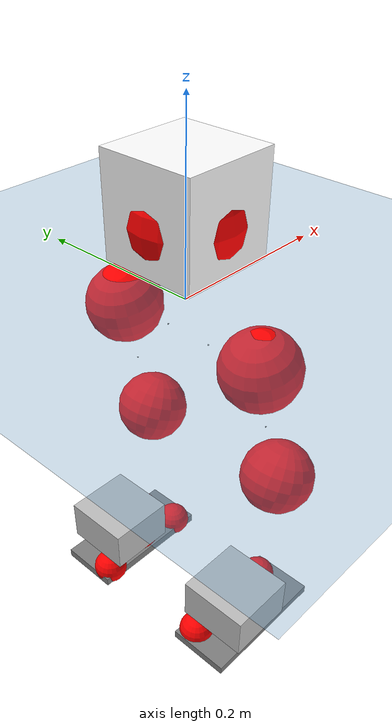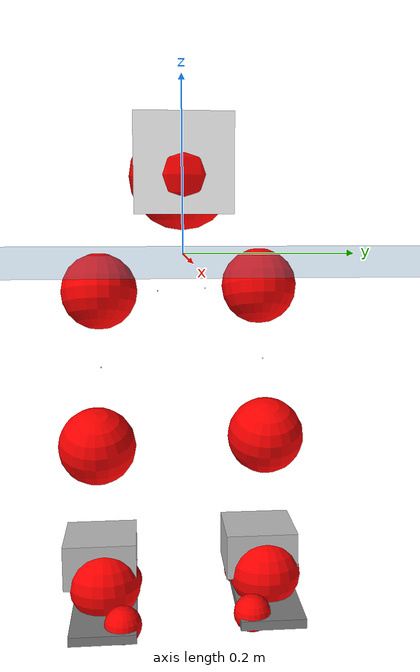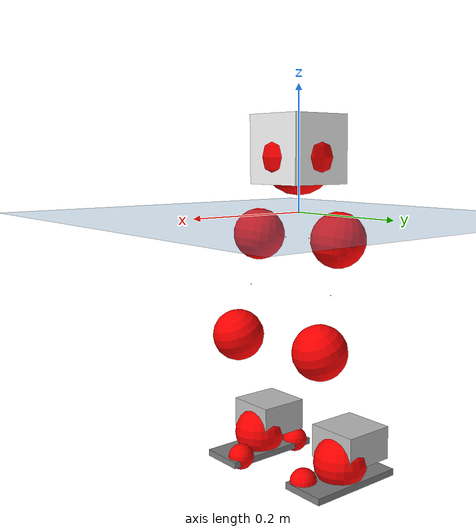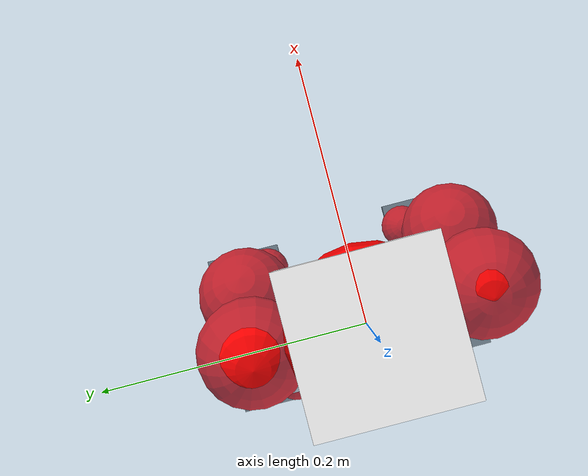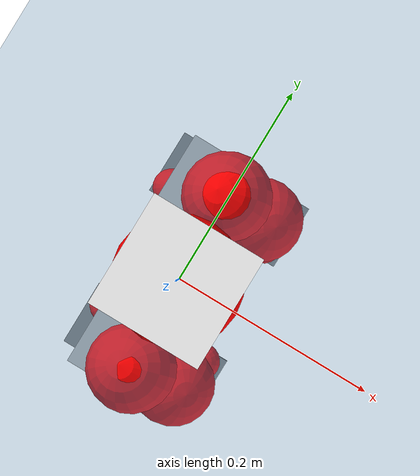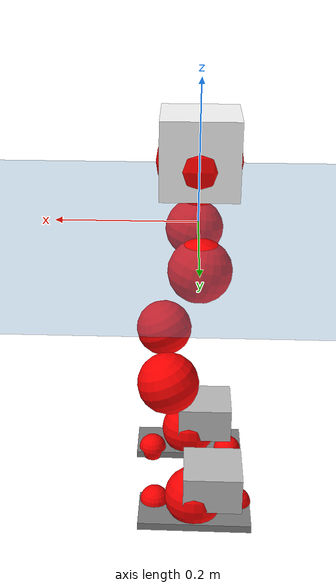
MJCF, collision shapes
<mujoco model="pi_12dof_release_v1">
  <compiler angle="radian" assetdir="assets" balanceinertia="true" inertiafromgeom="false"/>

  <option timestep="0.005" density="1.2" viscosity="2e-05"/>

  <size nkey="1"/>

  <visual>
    <quality shadowsize="8192"/>
    <map shadowclip="0.5"/>
  </visual>

  <default>
    <default class="/">
      <joint armature="0.01" damping="0.01" frictionloss="0.01"/>
      <geom contype="0" conaffinity="0" group="1" solref="-1000 -80"/>
      <site size="0.01 0.005 0.005" group="5"/>
      <general forcelimited="true" biastype="affine" gainprm="20" biasprm="0 -20 -0.5"/>
      <default class="foot">
        <geom size="0.0845 0.036 0.005" type="box" condim="6" group="4" priority="1" friction="0.9 0.2 0.2" solimp="0.015 1 0.005"/>
      </default>
      <default class="reward_collision_sphere">
        <geom group="5" rgba="1 0 0 1"/>
      </default>
    </default>
  </default>

  <asset>
    <texture type="skybox" colorspace="auto" name="//unnamed_texture_0" builtin="gradient" rgb1="0.95 0.95 0.95" rgb2="0.95 0.95 0.95" width="100" height="600"/>
    <texture type="2d" colorspace="auto" name="texplane" builtin="checker" rgb1="0.345 0.575 0.748" rgb2="0.345 0.575 0.748" markrgb="1 1 1" width="512" height="512"/>
    <material name="MatPlane" class="/" texture="texplane" texuniform="true" texrepeat="2 2" specular="0.9"/>
    <mesh name="baselink_1" class="/" file="baselink_1.STL"/>
    <mesh name="r_hip_pitch_link" class="/" file="r_hip_pitch_link.STL"/>
    <mesh name="r_hip_roll_link" class="/" file="r_hip_roll_link.STL"/>
    <mesh name="r_thigh_link" class="/" file="r_thigh_link.STL"/>
    <mesh name="r_calf_link" class="/" file="r_calf_link.STL"/>
    <mesh name="r_ankle_pitch_link" class="/" file="r_ankle_pitch_link.STL"/>
    <mesh name="r_ankle_roll_link" class="/" file="r_ankle_roll_link.STL"/>
    <mesh name="l_hip_pitch_link" class="/" file="l_hip_pitch_link.STL"/>
    <mesh name="l_hip_roll_link" class="/" file="l_hip_roll_link.STL"/>
    <mesh name="l_thigh_link" class="/" file="l_thigh_link.STL"/>
    <mesh name="l_calf_link" class="/" file="l_calf_link.STL"/>
    <mesh name="l_ankle_pitch_link" class="/" file="l_ankle_pitch_link.STL"/>
    <mesh name="l_ankle_roll_link" class="/" file="l_ankle_roll_link.STL"/>
  </asset>

  <worldbody>
    <geom name="floor" class="/" size="100 100 0.125" type="plane" group="0" material="MatPlane"/>
    <light name="toplight_shadow" class="/" pos="0 0 5" dir="0.0990148 0.0990148 -0.990148" type="directional" ambient="0.04 0.04 0.04" diffuse="0.55 0.55 0.55" specular="0.12 0.12 0.12"/>
    <light name="toplight_fill" class="/" pos="0 0 5" dir="0.0990148 0.0990148 -0.990148" type="directional" castshadow="false" ambient="0.04 0.04 0.04" diffuse="0.3 0.3 0.3" specular="0.08 0.08 0.08"/>
    <body name="trunk" pos="0.000244593 -0.000488303 0.000274278" quat="1 -4.91708e-05 -4.92395e-05 1.15735e-05">
      <inertial pos="0.00498244 -1.07901e-05 0.0499624" quat="0.690496 0.0238817 0.0136342 0.722813" mass="2.77349" diaginertia="0.00563509 0.0156539 0.0119823"/>
      <joint name="//unnamed_joint_0" type="free"/>
      <geom name="//unnamed_geom_1" class="/" type="mesh" density="0" rgba="1 1 1 1" mesh="baselink_1"/>
      <geom name="//unnamed_geom_2" class="/" size="0.0542897 0.0542897 0.0542897" pos="0 0 0.098829" type="box" rgba="1 1 1 1"/>
      <geom name="//unnamed_geom_3" class="reward_collision_sphere" size="0.0597187" pos="0 0 0.0864754"/>
      <site name="imu" class="/" pos="0.00359173 0.0103624 -0.00250025" size="0.0108579"/>
      <camera name="track" class="/" pos="0 -2.24366 0" quat="0.707107 0.707107 0 0" mode="trackcom"/>
      <camera name="ego_camera" class="/" pos="0.0675142 0 0.222365" quat="-0.5 -0.5 0.5 0.5"/>
      <body name="r_hip_pitch_link" pos="0.00222962 -0.028908 -0.0423966" quat="0.992206 2.68882e-05 -0.124612 -4.12361e-05">
        <inertial pos="0.000460794 -0.0620103 0.00227223" quat="-0.0186234 0.704297 -0.0299422 0.709029" mass="0.475605" diaginertia="6.42441e-05 0.000176694 0.000236076"/>
        <joint name="r_hip_pitch_joint" class="/" pos="0 0 0" axis="0.00135221 -0.999939 -0.01096" range="-1.75206 1.20597" armature="0.0103844" damping="0.0150101" frictionloss="0.00958714"/>
        <geom name="//unnamed_geom_4" class="/" type="mesh" density="0" rgba="0.75294 0.75294 0.75294 1" mesh="r_hip_pitch_link"/>
        <geom name="//unnamed_geom_5" class="/" size="0.000542897 0.000542897 0.000542897" type="box" rgba="0.75294 0.75294 0.75294 1"/>
        <body name="r_hip_roll_link" pos="0.0019104 -0.066527 -0.000427358" quat="1 0.000454719 -0.000275031 -2.29712e-05">
          <inertial pos="-0.000386219 0.00216437 -0.0740772" quat="0.705442 -0.0767642 -0.0836634 0.699614" mass="0.498136" diaginertia="0.000197358 0.000493862 0.000355254"/>
          <joint name="r_hip_roll_joint" class="/" pos="0 0 0" axis="-0.999968 -0.00690793 -0.00400477" range="-0.103617 0.496758" armature="0.0100175" damping="0.0381023" frictionloss="0.0109762"/>
          <geom name="//unnamed_geom_6" class="/" type="mesh" density="0" rgba="0.75294 0.75294 0.75294 1" mesh="r_hip_roll_link"/>
          <geom name="//unnamed_geom_7" class="/" size="0.000542897 0.000542897 0.000542897" type="box" rgba="0.75294 0.75294 0.75294 1"/>
          <geom name="//unnamed_geom_8" class="reward_collision_sphere" size="0.0434317"/>
          <body name="r_thigh_link" pos="-0.00189781 0.00146292 -0.0865701" quat="0.999999 0.000514338 0.000904673 0.000294349">
            <inertial pos="0.00166144 0.00140068 -0.0562248" quat="0.737768 0.675055 0.000505263 0.000210707" mass="0.142" diaginertia="7.29541e-05 0.000163631 0.000170248"/>
            <joint name="r_thigh_joint" class="/" pos="0 0 0" axis="-0.000791884 0.0034378 -0.999994" range="-0.325088 0.601919" armature="0.00938209" damping="0.00390284" frictionloss="0.0104299"/>
            <geom name="//unnamed_geom_9" class="/" type="mesh" density="0" rgba="0.75294 0.75294 0.75294 1" mesh="r_thigh_link"/>
            <geom name="//unnamed_geom_10" class="/" size="0.000542897 0.000542897 0.000542897" type="box" rgba="0.75294 0.75294 0.75294 1"/>
            <body name="r_calf_link" pos="0.00253784 -0.00516763 -0.088575" quat="0.94765 6.40489e-06 0.319312 1.81278e-07">
              <inertial pos="-0.00323677 0.00119139 -0.0840634" quat="0.999985 -0.00151223 -5.30705e-06 0.00529768" mass="1.05211" diaginertia="0.00201723 0.00647862 0.000504709"/>
              <joint name="r_calf_joint" class="/" pos="0 0 0" axis="0.00888254 -0.999955 -0.00322903" range="-1.71263 0.693524" armature="0.00958228" damping="0.0121719" frictionloss="0.0121601"/>
              <geom name="//unnamed_geom_11" class="/" type="mesh" density="0" rgba="0.75294 0.75294 0.75294 1" mesh="r_calf_link"/>
              <geom name="//unnamed_geom_12" class="/" size="0.000542897 0.000542897 0.000542897" type="box" rgba="0.75294 0.75294 0.75294 1"/>
              <geom name="//unnamed_geom_13" class="reward_collision_sphere" size="0.0434317"/>
              <body name="r_ankle_pitch_link" pos="-0.00134846 -0.00272096 -0.170655" quat="0.979958 0.000435053 -0.199202 -0.000931489">
                <inertial pos="0.00192058 0.00666582 -0.000328004" quat="0.00616007 0.701201 -0.00401583 0.712925" mass="0.227982" diaginertia="0.000181803 0.000393242 0.000332729"/>
                <joint name="r_ankle_pitch_joint" class="/" pos="0 0 0" axis="-0.00629521 -0.999963 -0.00591293" stiffness="0.00405619" range="-1.24758 0.46966" armature="0.0106234" damping="0.0157949" frictionloss="0.00939693"/>
                <geom name="//unnamed_geom_14" class="/" type="mesh" density="0" rgba="0.75294 0.75294 0.75294 1" mesh="r_ankle_pitch_link"/>
                <geom name="//unnamed_geom_15" class="/" size="0.042346 0.0434317 0.0271448" type="box" rgba="0.75294 0.75294 0.75294 1"/>
                <body name="r_ankle_roll_link" pos="0.0706278 0.00516986 -0.00110559" quat="1 -5.72014e-05 8.52576e-05 -0.000249668">
                  <inertial pos="-0.0184785 -0.000685922 -0.0166592" quat="0.561551 0.436238 0.435122 0.552292" mass="0.663523" diaginertia="0.000684766 0.00183159 0.000839136"/>
                  <joint name="r_ankle_roll_joint" class="/" pos="0 0 0" axis="-0.999996 0.00266964 -0.00020837" stiffness="0.00891743" range="-0.104596 0.135112" armature="0.0110259" damping="0" frictionloss="0.00958988"/>
                  <geom name="//unnamed_geom_16" class="/" type="mesh" density="0" rgba="0.75294 0.75294 0.75294 1" mesh="r_ankle_roll_link"/>
                  <geom name="//unnamed_geom_17" class="/" type="mesh" rgba="0.75294 0.75294 0.75294 1" mesh="r_ankle_roll_link"/>
                  <geom name="right_foot" class="foot" size="0.0846146 0.0381944 0.00540329" pos="-0.0459096 0 -0.054356"/>
                  <geom name="//unnamed_geom_19" class="reward_collision_sphere" size="0.0434317" pos="-0.0450095 0 -0.0247073"/>
                  <geom name="//unnamed_geom_20" class="reward_collision_sphere" size="0.0217159" pos="0.0135028 0.0224366 -0.0494145"/>
                  <geom name="//unnamed_geom_21" class="reward_collision_sphere" size="0.0217159" pos="-0.108023 0.0224366 -0.0494145"/>
                  <site name="right_foot" class="foot" pos="-0.0459096 0 -0.054356" size="0.0108579"/>
                </body>
              </body>
            </body>
          </body>
        </body>
      </body>
      <body name="l_hip_pitch_link" pos="0.000473018 0.0259022 -0.0397421" quat="0.992335 0.00016071 -0.123574 -0.000772763">
        <inertial pos="-0.000184521 0.0610339 0.00216919" quat="-0.0275205 0.708042 0.0238478 0.705231" mass="0.53182" diaginertia="7.85573e-05 0.000192435 0.000301147"/>
        <joint name="l_hip_pitch_joint" class="/" pos="0 0 0" axis="0.000249474 1 -0.000289594" range="-1.25009 1.76422" armature="0.0110342" damping="0.00926115" frictionloss="0.0116174"/>
        <geom name="//unnamed_geom_22" class="/" type="mesh" density="0" rgba="0.75294 0.75294 0.75294 1" mesh="l_hip_pitch_link"/>
        <geom name="//unnamed_geom_23" class="/" size="0.000542897 0.000542897 0.000542897" type="box" rgba="0.75294 0.75294 0.75294 1"/>
        <body name="l_hip_roll_link" pos="-0.00253005 0.0630882 0.0026357" quat="1 -8.5816e-05 -0.00054418 0.00037138">
          <inertial pos="-0.000790973 -0.000346449 -0.0733054" quat="0.705948 -0.0755368 -0.0741106 0.700313" mass="0.494767" diaginertia="0.000197392 0.000526638 0.000380816"/>
          <joint name="l_hip_roll_joint" class="/" pos="0 0 0" axis="-0.999999 0.00127099 4.56589e-05" range="-0.467259 0.121938" armature="0.0108824" damping="0.00966768" frictionloss="0.0123194"/>
          <geom name="//unnamed_geom_24" class="/" type="mesh" density="0" rgba="0.75294 0.75294 0.75294 1" mesh="l_hip_roll_link"/>
          <geom name="//unnamed_geom_25" class="/" size="0.000542897 0.000542897 0.000542897" type="box" rgba="0.75294 0.75294 0.75294 1"/>
          <geom name="//unnamed_geom_26" class="reward_collision_sphere" size="0.0434317"/>
          <body name="l_thigh_link" pos="-0.00262866 0.00279937 -0.0846149" quat="1 -0.000285807 -0.000384952 -0.000786943">
            <inertial pos="0.000814913 -0.00148024 -0.0612077" quat="0.674809 0.737989 -0.0018284 0.00116807" mass="0.150978" diaginertia="7.50256e-05 0.000173057 0.000171512"/>
            <joint name="l_thigh_joint" class="/" pos="0 0 0" axis="-0.000534921 0.000622659 -1" stiffness="0.000537005" range="-0.579191 0.304578" armature="0.00996144" damping="0.00450313" frictionloss="0.0106278"/>
            <geom name="//unnamed_geom_27" class="/" type="mesh" density="0" rgba="0.75294 0.75294 0.75294 1" mesh="l_thigh_link"/>
            <geom name="//unnamed_geom_28" class="/" size="0.000542897 0.000542897 0.000542897" type="box" rgba="0.75294 0.75294 0.75294 1"/>
            <body name="l_calf_link" pos="2.66777e-05 0.000534568 -0.0887061" quat="0.947615 0.000131631 0.319414 -0.000150165">
              <inertial pos="0.00290593 0.00382389 -0.0876446" quat="0.999909 0.00477501 -0.0116605 0.00475518" mass="1.05994" diaginertia="0.0021529 0.00659109 0.000506015"/>
              <joint name="l_calf_joint" class="/" pos="0 0 0" axis="0.00507812 0.999952 -0.00842732" range="-0.605865 1.59989" armature="0.012227" damping="0.020197" frictionloss="0.0123177"/>
              <geom name="//unnamed_geom_29" class="/" type="mesh" density="0" rgba="0.75294 0.75294 0.75294 1" mesh="l_calf_link"/>
              <geom name="//unnamed_geom_30" class="/" size="0.000542897 0.000542897 0.000542897" type="box" rgba="0.75294 0.75294 0.75294 1"/>
              <geom name="//unnamed_geom_31" class="reward_collision_sphere" size="0.0434317"/>
              <body name="l_ankle_pitch_link" pos="0.00103038 0.00153197 -0.171874" quat="0.980123 0.000350088 -0.19839 -0.000269119">
                <inertial pos="0.00399795 -2.2185e-05 0.00207107" quat="0.000254757 0.714323 0.00158279 0.699815" mass="0.218291" diaginertia="0.000177943 0.000380762 0.000337333"/>
                <joint name="l_ankle_pitch_joint" class="/" pos="0 0 0" axis="0.00193527 0.999969 -0.00769746" range="-0.511341 1.33635" armature="0.0111439" damping="0.0194202" frictionloss="0.0109632"/>
                <geom name="//unnamed_geom_32" class="/" type="mesh" density="0" rgba="0.75294 0.75294 0.75294 1" mesh="l_ankle_pitch_link"/>
                <geom name="//unnamed_geom_33" class="/" size="0.042346 0.0434317 0.0271448" type="box" rgba="0.75294 0.75294 0.75294 1"/>
                <body name="l_ankle_roll_link" pos="0.0711718 0.00469608 -0.000312064" quat="0.999999 0.000366886 -3.42803e-05 -0.00117631">
                  <inertial pos="-0.0245568 -0.000849597 -0.0205928" quat="0.56269 0.418959 0.439879 0.560679" mass="0.65887" diaginertia="0.000651608 0.00175466 0.000826404"/>
                  <joint name="l_ankle_roll_joint" class="/" pos="0 0 0" axis="-0.999915 -0.0129659 0.00138074" range="-0.2016 0.13844" armature="0.0100687" damping="0.000140299" frictionloss="0.0110694"/>
                  <geom name="//unnamed_geom_34" class="/" type="mesh" density="0" rgba="0.75294 0.75294 0.75294 1" mesh="l_ankle_roll_link"/>
                  <geom name="//unnamed_geom_35" class="/" type="mesh" rgba="0.75294 0.75294 0.75294 1" mesh="l_ankle_roll_link"/>
                  <geom name="left_foot" class="foot" size="0.0822481 0.0380473 0.00558538" pos="-0.0459096 0 -0.054356"/>
                  <geom name="//unnamed_geom_37" class="reward_collision_sphere" size="0.0434317" pos="-0.0450095 0 -0.0247073"/>
                  <geom name="//unnamed_geom_38" class="reward_collision_sphere" size="0.0217159" pos="0.0135028 -0.0224366 -0.0494145"/>
                  <geom name="//unnamed_geom_39" class="reward_collision_sphere" size="0.0217159" pos="-0.108023 -0.0224366 -0.0494145"/>
                  <site name="left_foot" class="foot" pos="-0.0459096 0 -0.054356" size="0.0108579"/>
                </body>
              </body>
            </body>
          </body>
        </body>
      </body>
    </body>
  </worldbody>

  <contact>
    <pair class="/" geom1="floor" geom2="right_foot" name="//unnamed_contact_1"/>
    <pair class="/" geom1="floor" geom2="left_foot" name="//unnamed_contact_0"/>
  </contact>

  <actuator>
    <general name="r_hip_pitch_joint" class="/" joint="r_hip_pitch_joint" forcerange="-20.7801 20.7801" gainprm="20.7014" biasprm="0 -20.7014 -0.516859"/>
    <general name="r_hip_roll_joint" class="/" joint="r_hip_roll_joint" forcerange="-23.1705 23.1705" gainprm="20.7014" biasprm="0 -20.7014 -0.516859"/>
    <general name="r_thigh_joint" class="/" joint="r_thigh_joint" forcerange="-23.9934 23.9934" gainprm="20.7014" biasprm="0 -20.7014 -0.516859"/>
    <general name="r_calf_joint" class="/" joint="r_calf_joint" forcerange="-23.4366 23.4366" gainprm="20.7014" biasprm="0 -20.7014 -0.516859"/>
    <general name="r_ankle_pitch_joint" class="/" joint="r_ankle_pitch_joint" forcerange="-21.4638 21.4638" gainprm="20.7014" biasprm="0 -20.7014 -0.516859"/>
    <general name="r_ankle_roll_joint" class="/" joint="r_ankle_roll_joint" forcerange="-21.4145 21.4145" gainprm="20.7014" biasprm="0 -20.7014 -0.516859"/>
    <general name="l_hip_pitch_joint" class="/" joint="l_hip_pitch_joint" forcerange="-20.2222 20.2222" gainprm="20.7014" biasprm="0 -20.7014 -0.516859"/>
    <general name="l_hip_roll_joint" class="/" joint="l_hip_roll_joint" forcerange="-21.6561 21.6561" gainprm="20.7014" biasprm="0 -20.7014 -0.516859"/>
    <general name="l_thigh_joint" class="/" joint="l_thigh_joint" forcerange="-20.5208 20.5208" gainprm="20.7014" biasprm="0 -20.7014 -0.516859"/>
    <general name="l_calf_joint" class="/" joint="l_calf_joint" forcerange="-21.4235 21.4235" gainprm="20.7014" biasprm="0 -20.7014 -0.516859"/>
    <general name="l_ankle_pitch_joint" class="/" joint="l_ankle_pitch_joint" forcerange="-21.4105 21.4105" gainprm="20.7014" biasprm="0 -20.7014 -0.516859"/>
    <general name="l_ankle_roll_joint" class="/" joint="l_ankle_roll_joint" forcerange="-24.0614 24.0614" gainprm="20.7014" biasprm="0 -20.7014 -0.516859"/>
  </actuator>

  <sensor>
    <gyro site="imu" name="imu_angular_velocity"/>
    <velocimeter site="imu" name="imu_linear_velocity"/>
    <framelinvel objtype="site" objname="left_foot" name="left_foot_global_linear_velocity"/>
    <framelinvel objtype="site" objname="right_foot" name="right_foot_global_linear_velocity"/>
  </sensor>

  <keyframe>
    <key name="home" qpos="0 0 0.291 1 0 0 0 0.4 0 0 -0.8 0.4 0 -0.4 0 0 0.8 -0.4 0"/>
  </keyframe>
</mujoco>
